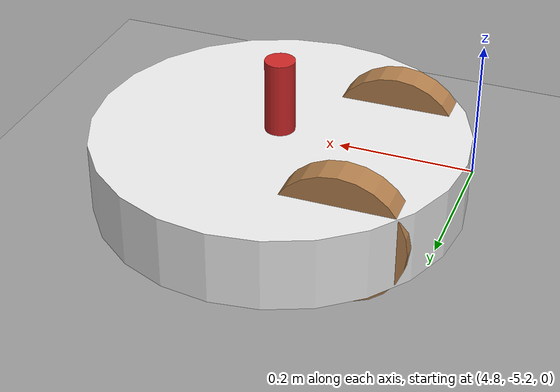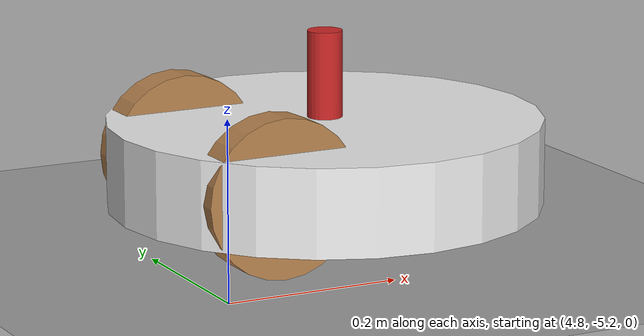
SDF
<sdf version="1.7">
 <world name="default">
  <model name="logger3">
   <link name="logger-chassis">
    <inertial>
     <pose>0.005952 0 -0.002381 0 -0 0</pose>
     <mass>2.1</mass>
     <inertia>
      <ixx>0.0332188</ixx>
      <ixy>0</ixy>
      <ixz>0.000595238</ixz>
      <iyy>0.0347069</iyy>
      <iyz>0</iyz>
      <izz>0.0640521</izz>
     </inertia>
    </inertial>
    <collision name="logger-chassis_collision">
     <geometry><cylinder><length>0.1</length><radius>0.25</radius></cylinder></geometry>
     <surface><friction><ode><mu>0.5</mu><mu2>0.5</mu2></ode></friction></surface>
    </collision>
    <collision name="logger-chassis_fixed_joint_lump__logger-caster_collision_1">
     <pose>0.125 0 -0.05 0 -0 0</pose>
     <geometry><sphere><radius>0.04</radius></sphere></geometry>
     <surface><friction><ode><mu>0</mu><mu2>0</mu2></ode></friction></surface>
    </collision>
    <visual name="logger-chassis_visual">
     <geometry><cylinder><length>0.1</length><radius>0.25</radius></cylinder></geometry>
     <material>
      <script><name>Gazebo/White</name><uri>file://media/materials/scripts/gazebo.material</uri></script>
     </material>
    </visual>
    <visual name="logger-chassis_fixed_joint_lump__logger-caster_visual_1">
     <pose>0.125 0 -0.05 0 -0 0</pose>
     <geometry><sphere><radius>0.04</radius></sphere></geometry>
     <material>
      <script><name>Gazebo/Grey</name><uri>file://media/materials/scripts/gazebo.material</uri></script>
     </material>
    </visual>
   </link>
   <joint name="logger-chassis2hat" type="revolute">
    <pose relative_to="logger-chassis">0 0 0.1 0 -0 0</pose>
    <parent>logger-chassis</parent>
    <child>logger-hat</child>
    <axis>
     <xyz>0 0 1</xyz>
     <limit><lower>-1e+16</lower><upper>1e+16</upper></limit>
     <dynamics><spring_reference>0</spring_reference><spring_stiffness>0</spring_stiffness></dynamics>
    </axis>
   </joint>
   <link name="logger-hat">
    <pose relative_to="logger-chassis2hat">0 0 0 0 -0 0</pose>
    <inertial>
     <pose>0 0 0.04 0 -0 0</pose>
     <mass>0.5</mass>
     <inertia>
      <ixx>0.000466667</ixx>
      <ixy>0</ixy>
      <ixz>0</ixz>
      <iyy>0.000466667</iyy>
      <iyz>0</iyz>
      <izz>0.0001</izz>
     </inertia>
    </inertial>
    <collision name="logger-hat_collision">
     <geometry><cylinder><length>0.1</length><radius>0.02</radius></cylinder></geometry>
     <surface><friction><ode><mu>0</mu><mu2>0</mu2></ode></friction></surface>
    </collision>
    <visual name="logger-hat_visual">
     <geometry><cylinder><length>0.1</length><radius>0.02</radius></cylinder></geometry>
     <material>
      <script><name>Gazebo/Red</name><uri>file://media/materials/scripts/gazebo.material</uri></script>
     </material>
    </visual>
   </link>
   <joint name="logger-chassis2left_wheel" type="revolute">
    <pose relative_to="logger-chassis">-0.125 -0.125 0 0 -0 0</pose>
    <parent>logger-chassis</parent>
    <child>logger-left_wheel</child>
    <axis>
     <xyz>0 1 0</xyz>
     <limit><lower>-1e+16</lower><upper>1e+16</upper></limit>
     <dynamics><spring_reference>0</spring_reference><spring_stiffness>0</spring_stiffness></dynamics>
    </axis>
   </joint>
   <link name="logger-left_wheel">
    <pose relative_to="logger-chassis2left_wheel">0 0 0 0 -0 0</pose>
    <inertial>
     <pose>0 0 0 1.5708 -0 0</pose>
     <mass>0.5</mass>
     <inertia>
      <ixx>0.00107917</ixx>
      <ixy>0</ixy>
      <ixz>0</ixz>
      <iyy>0.00107917</iyy>
      <iyz>0</iyz>
      <izz>0.002025</izz>
     </inertia>
    </inertial>
    <collision name="logger-left_wheel_collision">
     <pose>0 0 0 1.5708 -0 0</pose>
     <geometry><cylinder><length>0.04</length><radius>0.09</radius></cylinder></geometry>
     <surface><friction><ode><mu>0.99</mu><mu2>0.99</mu2></ode></friction></surface>
    </collision>
    <visual name="logger-left_wheel_visual">
     <pose>0 0 0 1.5708 -0 0</pose>
     <geometry><cylinder><length>0.04</length><radius>0.09</radius></cylinder></geometry>
     <material>
      <script><name>Gazebo/Wood</name><uri>file://media/materials/scripts/gazebo.material</uri></script>
     </material>
    </visual>
   </link>
   <joint name="logger-chassis2right_wheel" type="revolute">
    <pose relative_to="logger-chassis">-0.125 0.125 0 0 -0 0</pose>
    <parent>logger-chassis</parent>
    <child>logger-right_wheel</child>
    <axis>
     <xyz>0 1 0</xyz>
     <limit><lower>-1e+16</lower><upper>1e+16</upper></limit>
     <dynamics><spring_reference>0</spring_reference><spring_stiffness>0</spring_stiffness></dynamics>
    </axis>
   </joint>
   <link name="logger-right_wheel">
    <pose relative_to="logger-chassis2right_wheel">0 0 0 0 -0 0</pose>
    <inertial>
     <pose>0 0 0 1.5708 -0 0</pose>
     <mass>0.5</mass>
     <inertia>
      <ixx>0.00107917</ixx>
      <ixy>0</ixy>
      <ixz>0</ixz>
      <iyy>0.00107917</iyy>
      <iyz>0</iyz>
      <izz>0.002025</izz>
     </inertia>
    </inertial>
    <collision name="logger-right_wheel_collision">
     <pose>0 0 0 1.5708 -0 0</pose>
     <geometry><cylinder><length>0.04</length><radius>0.09</radius></cylinder></geometry>
     <surface><friction><ode><mu>0.99</mu><mu2>0.99</mu2></ode></friction></surface>
    </collision>
    <visual name="logger-right_wheel_visual">
     <pose>0 0 0 1.5708 -0 0</pose>
     <geometry><cylinder><length>0.04</length><radius>0.09</radius></cylinder></geometry>
     <material>
      <script><name>Gazebo/Wood</name><uri>file://media/materials/scripts/gazebo.material</uri></script>
     </material>
    </visual>
   </link>
   <static>0</static>
   <plugin name="differential_drive_controller" filename="libgazebo_ros_diff_drive.so">
    <legacyMode>0</legacyMode>
    <alwaysOn>1</alwaysOn>
    <updateRate>100</updateRate>
    <leftJoint>logger-chassis2left_wheel</leftJoint>
    <rightJoint>logger-chassis2right_wheel</rightJoint>
    <wheelSeparation>0.25</wheelSeparation>
    <wheelDiameter>0.18</wheelDiameter>
    <wheelTorque>1</wheelTorque>
    <commandTopic>logger3/cmd_vel</commandTopic>
    <odometryTopic>odom</odometryTopic>
    <odometryFrame>odom</odometryFrame>
    <robotBaseFrame>logger-chassis</robotBaseFrame>
    <robotNamespace>/</robotNamespace>
   </plugin>
   <pose>5.01742 -4.99934 0.09 0 -0 0.01355</pose>
  </model>
  <model name="ground_plane_0">
   <static>1</static>
   <link name="link">
    <collision name="collision">
     <geometry><plane><normal>0 0 1</normal><size>100 100</size></plane></geometry>
     <surface><friction><ode><mu>100</mu><mu2>50</mu2></ode></friction></surface>
    </collision>
    <visual name="visual">
     <cast_shadows>0</cast_shadows>
     <geometry><plane><normal>0 0 1</normal><size>100 100</size></plane></geometry>
     <material>
      <script><uri>file://media/materials/scripts/gazebo.material</uri><name>Gazebo/Grey</name></script>
     </material>
    </visual>
   </link>
   <pose>-0.237783 -13.2287 0 0 -0 0</pose>
  </model>
 </world>
</sdf>
